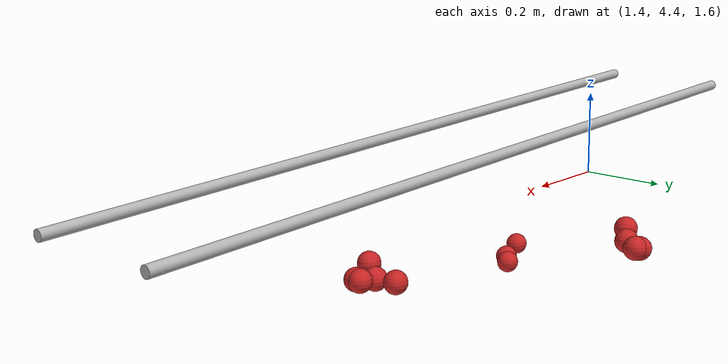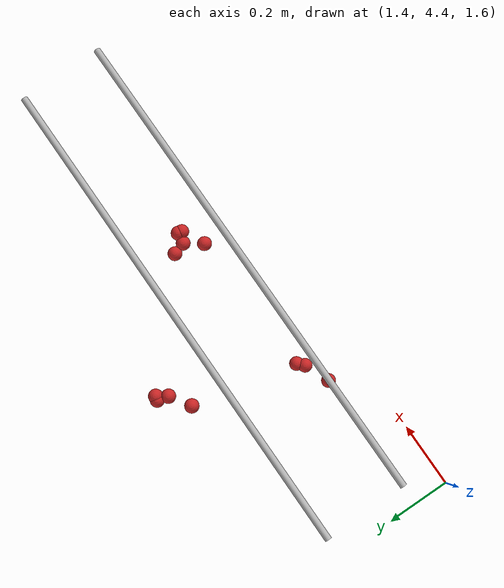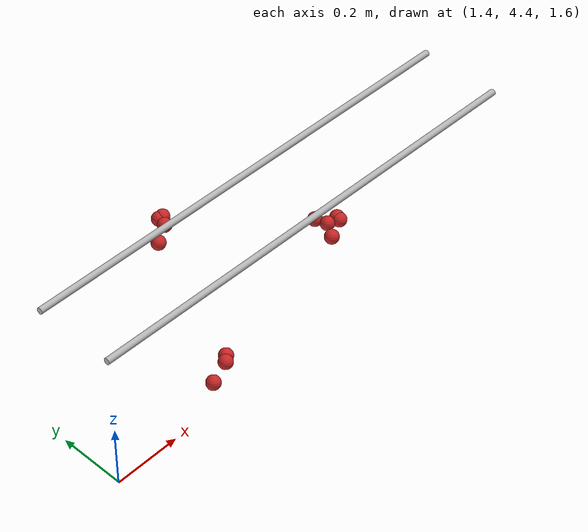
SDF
<sdf version="1.4">
 <model name="pergola">
  <link name="vine_37">
   <pose>2.25 4.53 1.85 0 -1.5374753309166493 0</pose>
   <collision name="collision">
    <geometry><cylinder><radius>0.01</radius><length>1.5008331019803633</length></cylinder></geometry>
   </collision>
   <visual name="visual">
    <geometry><cylinder><radius>0.01</radius><length>1.5008331019803633</length></cylinder></geometry>
    <material>
     <script>
      <uri>model://tree_trunk/materials/scripts</uri>
      <uri>model://tree_trunk/materials/textures</uri>
      <name>Tree/Bark</name>
     </script>
    </material>
   </visual>
   <inertial>
    <mass>5</mass>
    <inertia>
     <ixx>0.9386666666666668</ixx>
     <ixy>0.0</ixy>
     <ixz>0.0</ixz>
     <iyy>0.9386666666666668</iyy>
     <iyz>0.0</iyz>
     <izz>0.00025</izz>
    </inertia>
   </inertial>
  </link>
  <link name="vine_39">
   <pose>2.25 4.78 1.85 0 -1.5374753309166493 0</pose>
   <collision name="collision">
    <geometry><cylinder><radius>0.01</radius><length>1.5008331019803633</length></cylinder></geometry>
   </collision>
   <visual name="visual">
    <geometry><cylinder><radius>0.01</radius><length>1.5008331019803633</length></cylinder></geometry>
    <material>
     <script>
      <uri>model://tree_trunk/materials/scripts</uri>
      <uri>model://tree_trunk/materials/textures</uri>
      <name>Tree/Bark</name>
     </script>
    </material>
   </visual>
   <inertial>
    <mass>5</mass>
    <inertia>
     <ixx>0.9386666666666668</ixx>
     <ixy>0.0</ixy>
     <ixz>0.0</ixz>
     <iyy>0.9386666666666668</iyy>
     <iyz>0.0</iyz>
     <izz>0.00025</izz>
    </inertia>
   </inertial>
  </link>
  <link name="fruit_30">
   <pose>2.387383392655547 4.583949061070489 1.644111843702566 0 0 0</pose>
   <collision name="fruit_collision_30"><geometry><sphere><radius>0.022</radius></sphere></geometry></collision>
   <visual name="visual">
    <geometry><sphere><radius>0.022</radius></sphere></geometry>
    <material><script><name>Gazebo/Red</name></script></material>
   </visual>
   <inertial>
    <mass>0.05</mass>
    <inertia>
     <ixx>9.679999999999999e-06</ixx>
     <ixy>0.0</ixy>
     <ixz>0.0</ixz>
     <iyy>9.679999999999999e-06</iyy>
     <iyz>0.0</iyz>
     <izz>9.679999999999999e-06</izz>
    </inertia>
   </inertial>
   <sensor name="fruit_contact_30" type="contact">
    <plugin name="contact_plugin_30" filename="libcontact_plugin.so"/>
    <contact><collision>fruit_collision_30</collision><topic>fruit_contact_topic_30</topic></contact>
   </sensor>
  </link>
  <link name="fruit_127">
   <pose>1.8419390617816218 4.506469071579264 1.537366485472411 0 0 0</pose>
   <collision name="fruit_collision_127"><geometry><sphere><radius>0.022</radius></sphere></geometry></collision>
   <visual name="visual">
    <geometry><sphere><radius>0.022</radius></sphere></geometry>
    <material><script><name>Gazebo/Red</name></script></material>
   </visual>
   <inertial>
    <mass>0.05</mass>
    <inertia>
     <ixx>9.679999999999999e-06</ixx>
     <ixy>0.0</ixy>
     <ixz>0.0</ixz>
     <iyy>9.679999999999999e-06</iyy>
     <iyz>0.0</iyz>
     <izz>9.679999999999999e-06</izz>
    </inertia>
   </inertial>
   <sensor name="fruit_contact_127" type="contact">
    <plugin name="contact_plugin_127" filename="libcontact_plugin.so"/>
    <contact><collision>fruit_collision_127</collision><topic>fruit_contact_topic_127</topic></contact>
   </sensor>
  </link>
  <link name="fruit_149">
   <pose>2.0118390921483402 4.886027000463002 1.6816234623261472 0 0 0</pose>
   <collision name="fruit_collision_149"><geometry><sphere><radius>0.022</radius></sphere></geometry></collision>
   <visual name="visual">
    <geometry><sphere><radius>0.022</radius></sphere></geometry>
    <material><script><name>Gazebo/Red</name></script></material>
   </visual>
   <inertial>
    <mass>0.05</mass>
    <inertia>
     <ixx>9.679999999999999e-06</ixx>
     <ixy>0.0</ixy>
     <ixz>0.0</ixz>
     <iyy>9.679999999999999e-06</iyy>
     <iyz>0.0</iyz>
     <izz>9.679999999999999e-06</izz>
    </inertia>
   </inertial>
   <sensor name="fruit_contact_149" type="contact">
    <plugin name="contact_plugin_149" filename="libcontact_plugin.so"/>
    <contact><collision>fruit_collision_149</collision><topic>fruit_contact_topic_149</topic></contact>
   </sensor>
  </link>
  <link name="fruit_249">
   <pose>2.4587832814250388 4.63042451951299 1.638933461736313 0 0 0</pose>
   <collision name="fruit_collision_249"><geometry><sphere><radius>0.022</radius></sphere></geometry></collision>
   <visual name="visual">
    <geometry><sphere><radius>0.022</radius></sphere></geometry>
    <material><script><name>Gazebo/Red</name></script></material>
   </visual>
   <inertial>
    <mass>0.05</mass>
    <inertia>
     <ixx>9.679999999999999e-06</ixx>
     <ixy>0.0</ixy>
     <ixz>0.0</ixz>
     <iyy>9.679999999999999e-06</iyy>
     <iyz>0.0</iyz>
     <izz>9.679999999999999e-06</izz>
    </inertia>
   </inertial>
   <sensor name="fruit_contact_249" type="contact">
    <plugin name="contact_plugin_249" filename="libcontact_plugin.so"/>
    <contact><collision>fruit_collision_249</collision><topic>fruit_contact_topic_249</topic></contact>
   </sensor>
  </link>
  <link name="fruit_252">
   <pose>2.0831433183109977 4.959345085081587 1.6741259940497135 0 0 0</pose>
   <collision name="fruit_collision_252"><geometry><sphere><radius>0.022</radius></sphere></geometry></collision>
   <visual name="visual">
    <geometry><sphere><radius>0.022</radius></sphere></geometry>
    <material><script><name>Gazebo/Red</name></script></material>
   </visual>
   <inertial>
    <mass>0.05</mass>
    <inertia>
     <ixx>9.679999999999999e-06</ixx>
     <ixy>0.0</ixy>
     <ixz>0.0</ixz>
     <iyy>9.679999999999999e-06</iyy>
     <iyz>0.0</iyz>
     <izz>9.679999999999999e-06</izz>
    </inertia>
   </inertial>
   <sensor name="fruit_contact_252" type="contact">
    <plugin name="contact_plugin_252" filename="libcontact_plugin.so"/>
    <contact><collision>fruit_collision_252</collision><topic>fruit_contact_topic_252</topic></contact>
   </sensor>
  </link>
  <link name="fruit_277">
   <pose>1.91991325607155 4.5379855067032375 1.5338224861511105 0 0 0</pose>
   <collision name="fruit_collision_277"><geometry><sphere><radius>0.022</radius></sphere></geometry></collision>
   <visual name="visual">
    <geometry><sphere><radius>0.022</radius></sphere></geometry>
    <material><script><name>Gazebo/Red</name></script></material>
   </visual>
   <inertial>
    <mass>0.05</mass>
    <inertia>
     <ixx>9.679999999999999e-06</ixx>
     <ixy>0.0</ixy>
     <ixz>0.0</ixz>
     <iyy>9.679999999999999e-06</iyy>
     <iyz>0.0</iyz>
     <izz>9.679999999999999e-06</izz>
    </inertia>
   </inertial>
   <sensor name="fruit_contact_277" type="contact">
    <plugin name="contact_plugin_277" filename="libcontact_plugin.so"/>
    <contact><collision>fruit_collision_277</collision><topic>fruit_contact_topic_277</topic></contact>
   </sensor>
  </link>
  <link name="fruit_281">
   <pose>2.07359594093095 4.92591984031118 1.6794215195442599 0 0 0</pose>
   <collision name="fruit_collision_281"><geometry><sphere><radius>0.022</radius></sphere></geometry></collision>
   <visual name="visual">
    <geometry><sphere><radius>0.022</radius></sphere></geometry>
    <material><script><name>Gazebo/Red</name></script></material>
   </visual>
   <inertial>
    <mass>0.05</mass>
    <inertia>
     <ixx>9.679999999999999e-06</ixx>
     <ixy>0.0</ixy>
     <ixz>0.0</ixz>
     <iyy>9.679999999999999e-06</iyy>
     <iyz>0.0</iyz>
     <izz>9.679999999999999e-06</izz>
    </inertia>
   </inertial>
   <sensor name="fruit_contact_281" type="contact">
    <plugin name="contact_plugin_281" filename="libcontact_plugin.so"/>
    <contact><collision>fruit_collision_281</collision><topic>fruit_contact_topic_281</topic></contact>
   </sensor>
  </link>
  <link name="fruit_291">
   <pose>2.094936220924751 4.956892775262144 1.6767818715051144 0 0 0</pose>
   <collision name="fruit_collision_291"><geometry><sphere><radius>0.022</radius></sphere></geometry></collision>
   <visual name="visual">
    <geometry><sphere><radius>0.022</radius></sphere></geometry>
    <material><script><name>Gazebo/Red</name></script></material>
   </visual>
   <inertial>
    <mass>0.05</mass>
    <inertia>
     <ixx>9.679999999999999e-06</ixx>
     <ixy>0.0</ixy>
     <ixz>0.0</ixz>
     <iyy>9.679999999999999e-06</iyy>
     <iyz>0.0</iyz>
     <izz>9.679999999999999e-06</izz>
    </inertia>
   </inertial>
   <sensor name="fruit_contact_291" type="contact">
    <plugin name="contact_plugin_291" filename="libcontact_plugin.so"/>
    <contact><collision>fruit_collision_291</collision><topic>fruit_contact_topic_291</topic></contact>
   </sensor>
  </link>
  <link name="fruit_316">
   <pose>1.9394373968124046 4.5563109690688615 1.5298914935807661 0 0 0</pose>
   <collision name="fruit_collision_316"><geometry><sphere><radius>0.022</radius></sphere></geometry></collision>
   <visual name="visual">
    <geometry><sphere><radius>0.022</radius></sphere></geometry>
    <material><script><name>Gazebo/Red</name></script></material>
   </visual>
   <inertial>
    <mass>0.05</mass>
    <inertia>
     <ixx>9.679999999999999e-06</ixx>
     <ixy>0.0</ixy>
     <ixz>0.0</ixz>
     <iyy>9.679999999999999e-06</iyy>
     <iyz>0.0</iyz>
     <izz>9.679999999999999e-06</izz>
    </inertia>
   </inertial>
   <sensor name="fruit_contact_316" type="contact">
    <plugin name="contact_plugin_316" filename="libcontact_plugin.so"/>
    <contact><collision>fruit_collision_316</collision><topic>fruit_contact_topic_316</topic></contact>
   </sensor>
  </link>
  <link name="fruit_352">
   <pose>2.4566557116082963 4.6188978397274 1.6384677623717887 0 0 0</pose>
   <collision name="fruit_collision_352"><geometry><sphere><radius>0.022</radius></sphere></geometry></collision>
   <visual name="visual">
    <geometry><sphere><radius>0.022</radius></sphere></geometry>
    <material><script><name>Gazebo/Red</name></script></material>
   </visual>
   <inertial>
    <mass>0.05</mass>
    <inertia>
     <ixx>9.679999999999999e-06</ixx>
     <ixy>0.0</ixy>
     <ixz>0.0</ixz>
     <iyy>9.679999999999999e-06</iyy>
     <iyz>0.0</iyz>
     <izz>9.679999999999999e-06</izz>
    </inertia>
   </inertial>
   <sensor name="fruit_contact_352" type="contact">
    <plugin name="contact_plugin_352" filename="libcontact_plugin.so"/>
    <contact><collision>fruit_collision_352</collision><topic>fruit_contact_topic_352</topic></contact>
   </sensor>
  </link>
  <link name="fruit_414">
   <pose>2.4255169936750955 4.635274046781603 1.6350521859786373 0 0 0</pose>
   <collision name="fruit_collision_414"><geometry><sphere><radius>0.022</radius></sphere></geometry></collision>
   <visual name="visual">
    <geometry><sphere><radius>0.022</radius></sphere></geometry>
    <material><script><name>Gazebo/Red</name></script></material>
   </visual>
   <inertial>
    <mass>0.05</mass>
    <inertia>
     <ixx>9.679999999999999e-06</ixx>
     <ixy>0.0</ixy>
     <ixz>0.0</ixz>
     <iyy>9.679999999999999e-06</iyy>
     <iyz>0.0</iyz>
     <izz>9.679999999999999e-06</izz>
    </inertia>
   </inertial>
   <sensor name="fruit_contact_414" type="contact">
    <plugin name="contact_plugin_414" filename="libcontact_plugin.so"/>
    <contact><collision>fruit_collision_414</collision><topic>fruit_contact_topic_414</topic></contact>
   </sensor>
  </link>
  <link name="fruit_436">
   <pose>2.4139284920383397 4.67284722327932 1.6340109838571129 0 0 0</pose>
   <collision name="fruit_collision_436"><geometry><sphere><radius>0.022</radius></sphere></geometry></collision>
   <visual name="visual">
    <geometry><sphere><radius>0.022</radius></sphere></geometry>
    <material><script><name>Gazebo/Red</name></script></material>
   </visual>
   <inertial>
    <mass>0.05</mass>
    <inertia>
     <ixx>9.679999999999999e-06</ixx>
     <ixy>0.0</ixy>
     <ixz>0.0</ixz>
     <iyy>9.679999999999999e-06</iyy>
     <iyz>0.0</iyz>
     <izz>9.679999999999999e-06</izz>
    </inertia>
   </inertial>
   <sensor name="fruit_contact_436" type="contact">
    <plugin name="contact_plugin_436" filename="libcontact_plugin.so"/>
    <contact><collision>fruit_collision_436</collision><topic>fruit_contact_topic_436</topic></contact>
   </sensor>
  </link>
 </model>
</sdf>
